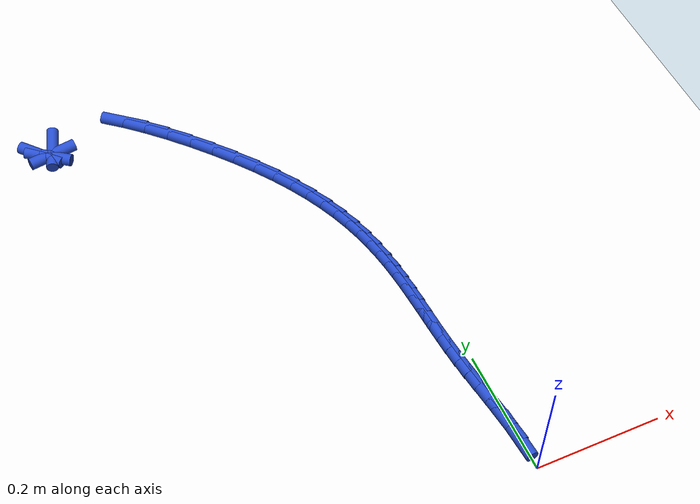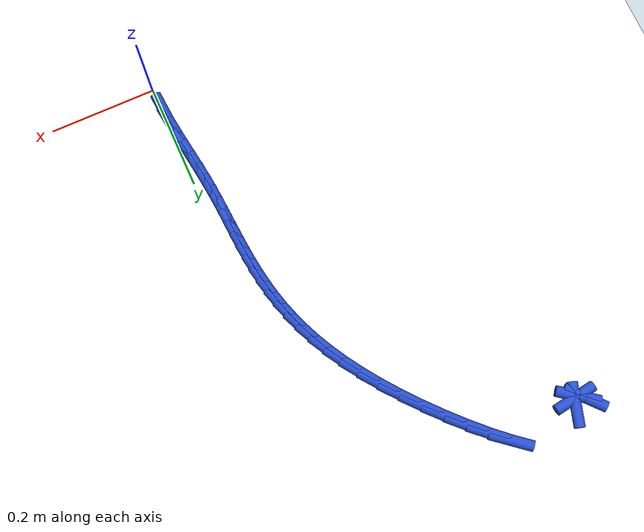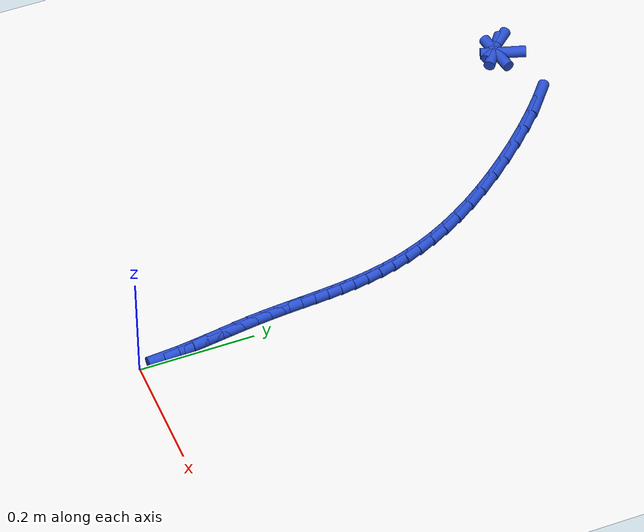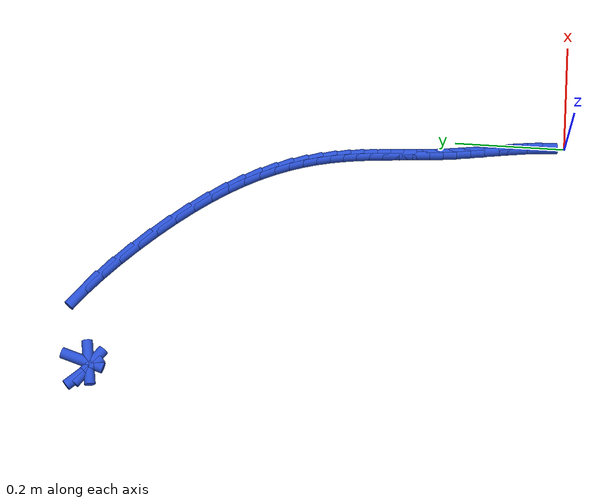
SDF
<sdf version="1.6">
 <world name="default">
  <model name="ground_plane">
   <static>1</static>
   <link name="link">
    <collision name="collision">
     <geometry><plane><normal>0 0 1</normal><size>100 100</size></plane></geometry>
     <surface><friction><ode><mu>100</mu><mu2>50</mu2></ode></friction></surface>
    </collision>
    <visual name="visual">
     <cast_shadows>0</cast_shadows>
     <geometry><plane><normal>0 0 1</normal><size>100 100</size></plane></geometry>
     <material>
      <script><uri>file://media/materials/scripts/gazebo.material</uri><name>Gazebo/WhiteGlow</name></script>
     </material>
    </visual>
   </link>
  </model>
  <model name="line">
   <link name="link_3">
    <pose>-0.006517943076058875 0.08084128980762992 0.01 0 1.57 -1.4454246716014492</pose>
    <collision name="collision">
     <geometry><cylinder><radius>0.01</radius><length>0.08</length></cylinder></geometry>
    </collision>
    <visual name="visual">
     <material>
      <script><name>Gazebo/Blue</name><uri>file://media/materials/scripts/gazebo.material</uri></script>
     </material>
     <geometry><cylinder><radius>0.01</radius><length>0.08</length></cylinder></geometry>
    </visual>
   </link>
   <link name="link_4">
    <pose>-0.009896985322780168 0.10765213213938638 0.01 0 1.57 -1.4349731755059414</pose>
    <collision name="collision">
     <geometry><cylinder><radius>0.01</radius><length>0.08</length></cylinder></geometry>
    </collision>
    <visual name="visual">
     <material>
      <script><name>Gazebo/Blue</name><uri>file://media/materials/scripts/gazebo.material</uri></script>
     </material>
     <geometry><cylinder><radius>0.01</radius><length>0.08</length></cylinder></geometry>
    </visual>
   </link>
   <link name="link_5">
    <pose>-0.013533780819756777 0.13426323730733108 0.01 0 1.57 -1.4316725979352658</pose>
    <collision name="collision">
     <geometry><cylinder><radius>0.01</radius><length>0.08</length></cylinder></geometry>
    </collision>
    <visual name="visual">
     <material>
      <script><name>Gazebo/Blue</name><uri>file://media/materials/scripts/gazebo.material</uri></script>
     </material>
     <geometry><cylinder><radius>0.01</radius><length>0.08</length></cylinder></geometry>
    </visual>
   </link>
   <link name="link_6">
    <pose>-0.01722106315073139 0.16059563929441306 0.01 0 1.57 -1.4357035309946928</pose>
    <collision name="collision">
     <geometry><cylinder><radius>0.01</radius><length>0.08</length></cylinder></geometry>
    </collision>
    <visual name="visual">
     <material>
      <script><name>Gazebo/Blue</name><uri>file://media/materials/scripts/gazebo.material</uri></script>
     </material>
     <geometry><cylinder><radius>0.01</radius><length>0.08</length></cylinder></geometry>
    </visual>
   </link>
   <link name="link_7">
    <pose>-0.02075156589944669 0.18657037208358124 0.01 0 1.57 -1.447436378632022</pose>
    <collision name="collision">
     <geometry><cylinder><radius>0.01</radius><length>0.08</length></cylinder></geometry>
    </collision>
    <visual name="visual">
     <material>
      <script><name>Gazebo/Blue</name><uri>file://media/materials/scripts/gazebo.material</uri></script>
     </material>
     <geometry><cylinder><radius>0.01</radius><length>0.08</length></cylinder></geometry>
    </visual>
   </link>
   <link name="link_8">
    <pose>-0.023918022649645362 0.21210846965778454 0.01 0 1.57 -1.4669296123937388</pose>
    <collision name="collision">
     <geometry><cylinder><radius>0.01</radius><length>0.08</length></cylinder></geometry>
    </collision>
    <visual name="visual">
     <material>
      <script><name>Gazebo/Blue</name><uri>file://media/materials/scripts/gazebo.material</uri></script>
     </material>
     <geometry><cylinder><radius>0.01</radius><length>0.08</length></cylinder></geometry>
    </visual>
   </link>
   <link name="link_9">
    <pose>-0.026527046002444068 0.23713702966311986 0.01 0 1.57 -1.4863525232889032</pose>
    <collision name="collision">
     <geometry><cylinder><radius>0.01</radius><length>0.08</length></cylinder></geometry>
    </collision>
    <visual name="visual">
     <material>
      <script><name>Gazebo/Blue</name><uri>file://media/materials/scripts/gazebo.material</uri></script>
     </material>
     <geometry><cylinder><radius>0.01</radius><length>0.08</length></cylinder></geometry>
    </visual>
   </link>
   <link name="link_10">
    <pose>-0.028604394348743737 0.26167889328528066 0.01 0 1.57 -1.498628566626526</pose>
    <collision name="collision">
     <geometry><cylinder><radius>0.01</radius><length>0.08</length></cylinder></geometry>
    </collision>
    <visual name="visual">
     <material>
      <script><name>Gazebo/Blue</name><uri>file://media/materials/scripts/gazebo.material</uri></script>
     </material>
     <geometry><cylinder><radius>0.01</radius><length>0.08</length></cylinder></geometry>
    </visual>
   </link>
   <link name="link_11">
    <pose>-0.030350593199935123 0.2858332564632835 0.01 0 1.57 -1.5030093183288966</pose>
    <collision name="collision">
     <geometry><cylinder><radius>0.01</radius><length>0.08</length></cylinder></geometry>
    </collision>
    <visual name="visual">
     <material>
      <script><name>Gazebo/Blue</name><uri>file://media/materials/scripts/gazebo.material</uri></script>
     </material>
     <geometry><cylinder><radius>0.01</radius><length>0.08</length></cylinder></geometry>
    </visual>
   </link>
   <link name="link_12">
    <pose>-0.0319710286408252 0.3097014386928143 0.01 0 1.57 -1.4991363128735355</pose>
    <collision name="collision">
     <geometry><cylinder><radius>0.01</radius><length>0.08</length></cylinder></geometry>
    </collision>
    <visual name="visual">
     <material>
      <script><name>Gazebo/Blue</name><uri>file://media/materials/scripts/gazebo.material</uri></script>
     </material>
     <geometry><cylinder><radius>0.01</radius><length>0.08</length></cylinder></geometry>
    </visual>
   </link>
   <link name="link_13">
    <pose>-0.03367108675622087 0.33338475946955826 0.01 0 1.57 -1.4868800694394178</pose>
    <collision name="collision">
     <geometry><cylinder><radius>0.01</radius><length>0.08</length></cylinder></geometry>
    </collision>
    <visual name="visual">
     <material>
      <script><name>Gazebo/Blue</name><uri>file://media/materials/scripts/gazebo.material</uri></script>
     </material>
     <geometry><cylinder><radius>0.01</radius><length>0.08</length></cylinder></geometry>
    </visual>
   </link>
   <link name="link_14">
    <pose>-0.03565615363092907 0.3569845382892012 0.01 0 1.57 -1.4663631767505563</pose>
    <collision name="collision">
     <geometry><cylinder><radius>0.01</radius><length>0.08</length></cylinder></geometry>
    </collision>
    <visual name="visual">
     <material>
      <script><name>Gazebo/Blue</name><uri>file://media/materials/scripts/gazebo.material</uri></script>
     </material>
     <geometry><cylinder><radius>0.01</radius><length>0.08</length></cylinder></geometry>
    </visual>
   </link>
   <link name="link_15">
    <pose>-0.038131615349756745 0.38060209464742845 0.01 0 1.57 -1.437981728939842</pose>
    <collision name="collision">
     <geometry><cylinder><radius>0.01</radius><length>0.08</length></cylinder></geometry>
    </collision>
    <visual name="visual">
     <material>
      <script><name>Gazebo/Blue</name><uri>file://media/materials/scripts/gazebo.material</uri></script>
     </material>
     <geometry><cylinder><radius>0.01</radius><length>0.08</length></cylinder></geometry>
    </visual>
   </link>
   <link name="link_16">
    <pose>-0.041302857997510836 0.4043387480399258 0.01 0 1.57 -1.402418024928704</pose>
    <collision name="collision">
     <geometry><cylinder><radius>0.01</radius><length>0.08</length></cylinder></geometry>
    </collision>
    <visual name="visual">
     <material>
      <script><name>Gazebo/Blue</name><uri>file://media/materials/scripts/gazebo.material</uri></script>
     </material>
     <geometry><cylinder><radius>0.01</radius><length>0.08</length></cylinder></geometry>
    </visual>
   </link>
   <link name="link_17">
    <pose>-0.045375267658998256 0.42829581796237853 0.01 0 1.57 -1.3606340619621375</pose>
    <collision name="collision">
     <geometry><cylinder><radius>0.01</radius><length>0.08</length></cylinder></geometry>
    </collision>
    <visual name="visual">
     <material>
      <script><name>Gazebo/Blue</name><uri>file://media/materials/scripts/gazebo.material</uri></script>
     </material>
     <geometry><cylinder><radius>0.01</radius><length>0.08</length></cylinder></geometry>
    </visual>
   </link>
   <link name="link_18">
    <pose>-0.05055423041902593 0.45257462391047243 0.01 0 1.57 -1.313835653054999</pose>
    <collision name="collision">
     <geometry><cylinder><radius>0.01</radius><length>0.08</length></cylinder></geometry>
    </collision>
    <visual name="visual">
     <material>
      <script><name>Gazebo/Blue</name><uri>file://media/materials/scripts/gazebo.material</uri></script>
     </material>
     <geometry><cylinder><radius>0.01</radius><length>0.08</length></cylinder></geometry>
    </visual>
   </link>
   <link name="link_19">
    <pose>-0.05704513236240083 0.4772764853798929 0.01 0 1.57 -1.2634025208370234</pose>
    <collision name="collision">
     <geometry><cylinder><radius>0.01</radius><length>0.08</length></cylinder></geometry>
    </collision>
    <visual name="visual">
     <material>
      <script><name>Gazebo/Blue</name><uri>file://media/materials/scripts/gazebo.material</uri></script>
     </material>
     <geometry><cylinder><radius>0.01</radius><length>0.08</length></cylinder></geometry>
    </visual>
   </link>
   <link name="link_20">
    <pose>-0.06505335957392987 0.5025027218663257 0.01 0 1.57 -1.2107896177288502</pose>
    <collision name="collision">
     <geometry><cylinder><radius>0.01</radius><length>0.08</length></cylinder></geometry>
    </collision>
    <visual name="visual">
     <material>
      <script><name>Gazebo/Blue</name><uri>file://media/materials/scripts/gazebo.material</uri></script>
     </material>
     <geometry><cylinder><radius>0.01</radius><length>0.08</length></cylinder></geometry>
    </visual>
   </link>
   <link name="link_21">
    <pose>-0.07478429813841997 0.5283546528654562 0.01 0 1.57 -1.1574153115900203</pose>
    <collision name="collision">
     <geometry><cylinder><radius>0.01</radius><length>0.08</length></cylinder></geometry>
    </collision>
    <visual name="visual">
     <material>
      <script><name>Gazebo/Blue</name><uri>file://media/materials/scripts/gazebo.material</uri></script>
     </material>
     <geometry><cylinder><radius>0.01</radius><length>0.08</length></cylinder></geometry>
    </visual>
   </link>
   <link name="link_22">
    <pose>-0.0864433341406781 0.5549335978729701 0.01 0 1.57 -1.1045577293823192</pose>
    <collision name="collision">
     <geometry><cylinder><radius>0.01</radius><length>0.08</length></cylinder></geometry>
    </collision>
    <visual name="visual">
     <material>
      <script><name>Gazebo/Blue</name><uri>file://media/materials/scripts/gazebo.material</uri></script>
     </material>
     <geometry><cylinder><radius>0.01</radius><length>0.08</length></cylinder></geometry>
    </visual>
   </link>
   <link name="link_23">
    <pose>-0.10023585366551116 0.5823408763845528 0.01 0 1.57 -1.0532783132168577</pose>
    <collision name="collision">
     <geometry><cylinder><radius>0.01</radius><length>0.08</length></cylinder></geometry>
    </collision>
    <visual name="visual">
     <material>
      <script><name>Gazebo/Blue</name><uri>file://media/materials/scripts/gazebo.material</uri></script>
     </material>
     <geometry><cylinder><radius>0.01</radius><length>0.08</length></cylinder></geometry>
    </visual>
   </link>
   <link name="link_24">
    <pose>-0.11636724279772609 0.6106778078958899 0.01 0 1.57 -1.004382760230723</pose>
    <collision name="collision">
     <geometry><cylinder><radius>0.01</radius><length>0.08</length></cylinder></geometry>
    </collision>
    <visual name="visual">
     <material>
      <script><name>Gazebo/Blue</name><uri>file://media/materials/scripts/gazebo.material</uri></script>
     </material>
     <geometry><cylinder><radius>0.01</radius><length>0.08</length></cylinder></geometry>
    </visual>
   </link>
   <link name="link_25">
    <pose>-0.13504288762212985 0.640045711902667 0.01 0 1.57 -0.9584186523242824</pose>
    <collision name="collision">
     <geometry><cylinder><radius>0.01</radius><length>0.08</length></cylinder></geometry>
    </collision>
    <visual name="visual">
     <material>
      <script><name>Gazebo/Blue</name><uri>file://media/materials/scripts/gazebo.material</uri></script>
     </material>
     <geometry><cylinder><radius>0.01</radius><length>0.08</length></cylinder></geometry>
    </visual>
   </link>
   <link name="link_26">
    <pose>-0.15646817422352932 0.6705459079005696 0.01 0 1.57 -0.9161712435235088</pose>
    <collision name="collision">
     <geometry><cylinder><radius>0.01</radius><length>0.08</length></cylinder></geometry>
    </collision>
    <visual name="visual">
     <material>
      <script><name>Gazebo/Blue</name><uri>file://media/materials/scripts/gazebo.material</uri></script>
     </material>
     <geometry><cylinder><radius>0.01</radius><length>0.08</length></cylinder></geometry>
    </visual>
   </link>
   <link name="link_27">
    <pose>-0.1807449769752361 0.702175760316052 0.01 0 1.57 -0.8790830635248844</pose>
    <collision name="collision">
     <geometry><cylinder><radius>0.01</radius><length>0.08</length></cylinder></geometry>
    </collision>
    <visual name="visual">
     <material>
      <script><name>Gazebo/Blue</name><uri>file://media/materials/scripts/gazebo.material</uri></script>
     </material>
     <geometry><cylinder><radius>0.01</radius><length>0.08</length></cylinder></geometry>
    </visual>
   </link>
   <link name="link_28">
    <pose>-0.20737909109445912 0.7343340013141078 0.01 0 1.57 -0.844959928777115</pose>
    <collision name="collision">
     <geometry><cylinder><radius>0.01</radius><length>0.08</length></cylinder></geometry>
    </collision>
    <visual name="visual">
     <material>
      <script><name>Gazebo/Blue</name><uri>file://media/materials/scripts/gazebo.material</uri></script>
     </material>
     <geometry><cylinder><radius>0.01</radius><length>0.08</length></cylinder></geometry>
    </visual>
   </link>
   <link name="link_29">
    <pose>-0.23566337948588661 0.7662055187229899 0.01 0 1.57 -0.8110999288396866</pose>
    <collision name="collision">
     <geometry><cylinder><radius>0.01</radius><length>0.08</length></cylinder></geometry>
    </collision>
    <visual name="visual">
     <material>
      <script><name>Gazebo/Blue</name><uri>file://media/materials/scripts/gazebo.material</uri></script>
     </material>
     <geometry><cylinder><radius>0.01</radius><length>0.08</length></cylinder></geometry>
    </visual>
   </link>
   <link name="link_30">
    <pose>-0.2648904391519137 0.7969749333297543 0.01 0 1.57 -0.7749295062159781</pose>
    <collision name="collision">
     <geometry><cylinder><radius>0.01</radius><length>0.08</length></cylinder></geometry>
    </collision>
    <visual name="visual">
     <material>
      <script><name>Gazebo/Blue</name><uri>file://media/materials/scripts/gazebo.material</uri></script>
     </material>
     <geometry><cylinder><radius>0.01</radius><length>0.08</length></cylinder></geometry>
    </visual>
   </link>
   <link name="link_31">
    <pose>-0.29435286709493536 0.8258268659214568 0.01 0 1.57 -0.7333430779876376</pose>
    <collision name="collision">
     <geometry><cylinder><radius>0.01</radius><length>0.08</length></cylinder></geometry>
    </collision>
    <visual name="visual">
     <material>
      <script><name>Gazebo/Blue</name><uri>file://media/materials/scripts/gazebo.material</uri></script>
     </material>
     <geometry><cylinder><radius>0.01</radius><length>0.08</length></cylinder></geometry>
    </visual>
   </link>
   <link name="link_32">
    <pose>-0.323343260317347 0.8519459372851538 0.01 0 1.57 -0.6817624799625955</pose>
    <collision name="collision">
     <geometry><cylinder><radius>0.01</radius><length>0.08</length></cylinder></geometry>
    </collision>
    <visual name="visual">
     <material>
      <script><name>Gazebo/Blue</name><uri>file://media/materials/scripts/gazebo.material</uri></script>
     </material>
     <geometry><cylinder><radius>0.01</radius><length>0.08</length></cylinder></geometry>
    </visual>
   </link>
   <link name="link_41">
    <pose>-0.453104415607279 0.843017025672246 0.01 0 1.57 1.2708311615728876</pose>
    <collision name="collision">
     <geometry><cylinder><radius>0.01</radius><length>0.08</length></cylinder></geometry>
    </collision>
    <visual name="visual">
     <material>
      <script><name>Gazebo/Blue</name><uri>file://media/materials/scripts/gazebo.material</uri></script>
     </material>
     <geometry><cylinder><radius>0.01</radius><length>0.08</length></cylinder></geometry>
    </visual>
   </link>
   <link name="link_42">
    <pose>-0.4565120910640011 0.8319995779230078 0.01 0 1.57 0.15256588074858432</pose>
    <collision name="collision">
     <geometry><cylinder><radius>0.01</radius><length>0.08</length></cylinder></geometry>
    </collision>
    <visual name="visual">
     <material>
      <script><name>Gazebo/Blue</name><uri>file://media/materials/scripts/gazebo.material</uri></script>
     </material>
     <geometry><cylinder><radius>0.01</radius><length>0.08</length></cylinder></geometry>
    </visual>
   </link>
   <link name="link_43">
    <pose>-0.4635730264974117 0.8309138833207236 0.01 0 1.57 -0.630652644858088</pose>
    <collision name="collision">
     <geometry><cylinder><radius>0.01</radius><length>0.08</length></cylinder></geometry>
    </collision>
    <visual name="visual">
     <material>
      <script><name>Gazebo/Blue</name><uri>file://media/materials/scripts/gazebo.material</uri></script>
     </material>
     <geometry><cylinder><radius>0.01</radius><length>0.08</length></cylinder></geometry>
    </visual>
   </link>
   <link name="link_44">
    <pose>-0.4739831339903845 0.838514456887011 0.01 0 1.57 -0.8410024436571727</pose>
    <collision name="collision">
     <geometry><cylinder><radius>0.01</radius><length>0.08</length></cylinder></geometry>
    </collision>
    <visual name="visual">
     <material>
      <script><name>Gazebo/Blue</name><uri>file://media/materials/scripts/gazebo.material</uri></script>
     </material>
     <geometry><cylinder><radius>0.01</radius><length>0.08</length></cylinder></geometry>
    </visual>
   </link>
   <link name="link_282">
    <pose>-0.0039637525300316384 0.05402009663834059 0.01 0 1.57 -1.4975520696114788</pose>
    <collision name="collision">
     <geometry><cylinder><radius>0.01</radius><length>0.08</length></cylinder></geometry>
    </collision>
    <visual name="visual">
     <material>
      <script><name>Gazebo/Blue</name><uri>file://media/materials/scripts/gazebo.material</uri></script>
     </material>
     <geometry><cylinder><radius>0.01</radius><length>0.08</length></cylinder></geometry>
    </visual>
   </link>
  </model>
 </world>
</sdf>
